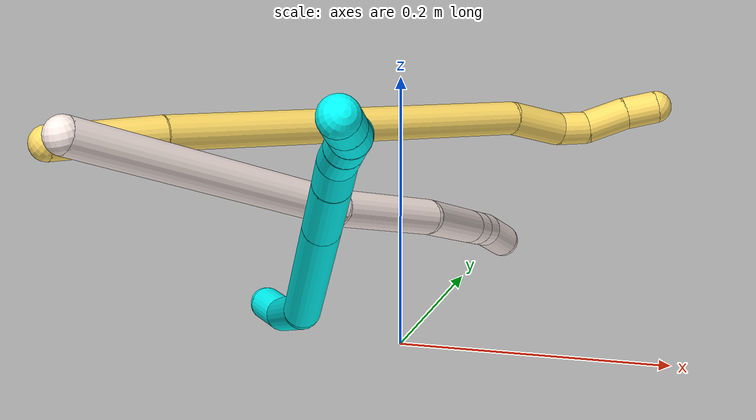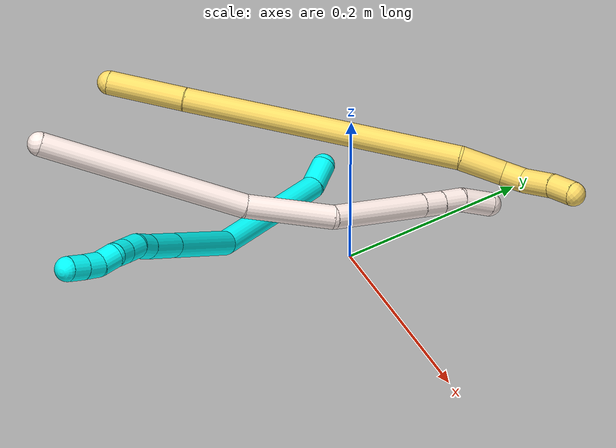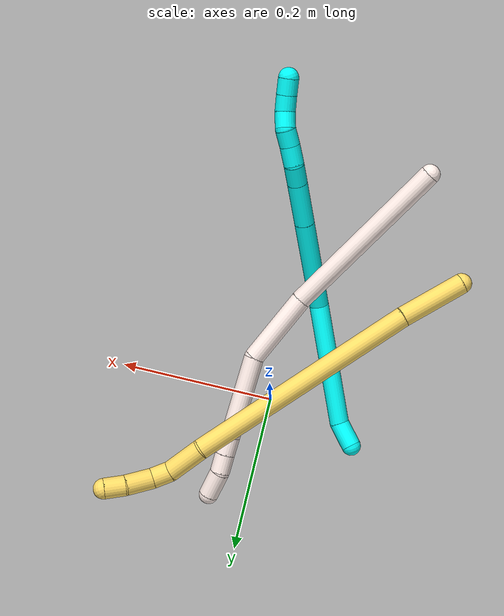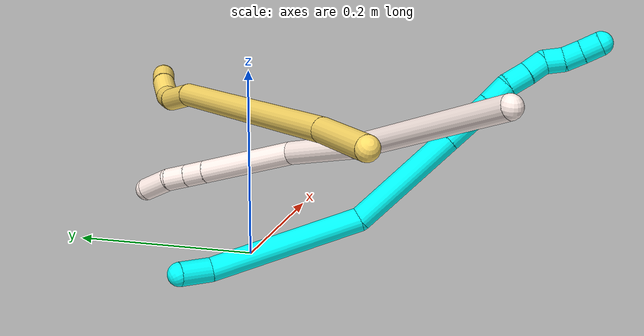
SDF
<sdf version="1.7">
 <world name="default">
  <model name="3">
   <static>0</static>
   <link name="3">
    <collision name="collision-cylinder-e_1_1_4">
     <pose>0.006016 0.003987 0.015242 -0.25588 0.364738 -0.047439</pose>
     <geometry><cylinder><radius>0.0125</radius><length>0.033728</length></cylinder></geometry>
     <surface>
      <friction><ode><mu>1.16</mu><mu2>1.16</mu2><slip1>0</slip1><slip2>0</slip2></ode></friction>
      <contact><ode><kp>1e+06</kp><kd>1</kd><max_vel>0</max_vel><min_depth>0.001</min_depth></ode></contact>
     </surface>
    </collision>
    <visual name="visual-cylinder-e_1_1_4">
     <pose>0.006016 0.003987 0.015242 -0.25588 0.364738 -0.047439</pose>
     <geometry><cylinder><radius>0.0125</radius><length>0.033728</length></cylinder></geometry>
     <material><ambient>0.003922 1 0.996078 1</ambient></material>
    </visual>
    <collision name="collision-cylinder-e_2_4_5">
     <pose>0.024923 -0.000769 0.108458 0.11167 0.162849 0.009122</pose>
     <geometry><cylinder><radius>0.0125</radius><length>0.159029</length></cylinder></geometry>
     <surface>
      <friction><ode><mu>1.16</mu><mu2>1.16</mu2><slip1>0</slip1><slip2>0</slip2></ode></friction>
      <contact><ode><kp>1e+06</kp><kd>1</kd><max_vel>0</max_vel><min_depth>0.001</min_depth></ode></contact>
     </surface>
    </collision>
    <visual name="visual-cylinder-e_2_4_5">
     <pose>0.024923 -0.000769 0.108458 0.11167 0.162849 0.009122</pose>
     <geometry><cylinder><radius>0.0125</radius><length>0.159029</length></cylinder></geometry>
     <material><ambient>0.003922 1 0.996078 1</ambient></material>
    </visual>
    <collision name="collision-cylinder-e_3_5_6">
     <pose>0.022831 -0.019453 0.244131 0.170615 -0.250529 -0.021536</pose>
     <geometry><cylinder><radius>0.0125</radius><length>0.120872</length></cylinder></geometry>
     <surface>
      <friction><ode><mu>1.16</mu><mu2>1.16</mu2><slip1>0</slip1><slip2>0</slip2></ode></friction>
      <contact><ode><kp>1e+06</kp><kd>1</kd><max_vel>0</max_vel><min_depth>0.001</min_depth></ode></contact>
     </surface>
    </collision>
    <visual name="visual-cylinder-e_3_5_6">
     <pose>0.022831 -0.019453 0.244131 0.170615 -0.250529 -0.021536</pose>
     <geometry><cylinder><radius>0.0125</radius><length>0.120872</length></cylinder></geometry>
     <material><ambient>0.003922 1 0.996078 1</ambient></material>
    </visual>
    <collision name="collision-cylinder-e_4_6_7">
     <pose>0.001021 -0.033886 0.328157 0.168973 -0.250281 -0.021306</pose>
     <geometry><cylinder><radius>0.0125</radius><length>0.055131</length></cylinder></geometry>
     <surface>
      <friction><ode><mu>1.16</mu><mu2>1.16</mu2><slip1>0</slip1><slip2>0</slip2></ode></friction>
      <contact><ode><kp>1e+06</kp><kd>1</kd><max_vel>0</max_vel><min_depth>0.001</min_depth></ode></contact>
     </surface>
    </collision>
    <visual name="visual-cylinder-e_4_6_7">
     <pose>0.001021 -0.033886 0.328157 0.168973 -0.250281 -0.021306</pose>
     <geometry><cylinder><radius>0.0125</radius><length>0.055131</length></cylinder></geometry>
     <material><ambient>0.003922 1 0.996078 1</ambient></material>
    </visual>
    <collision name="collision-cylinder-e_5_7_8">
     <pose>-0.009697 -0.040487 0.366537 0.173288 -0.307798 -0.026947</pose>
     <geometry><cylinder><radius>0.0125</radius><length>0.025681</length></cylinder></geometry>
     <surface>
      <friction><ode><mu>1.16</mu><mu2>1.16</mu2><slip1>0</slip1><slip2>0</slip2></ode></friction>
      <contact><ode><kp>1e+06</kp><kd>1</kd><max_vel>0</max_vel><min_depth>0.001</min_depth></ode></contact>
     </surface>
    </collision>
    <visual name="visual-cylinder-e_5_7_8">
     <pose>-0.009697 -0.040487 0.366537 0.173288 -0.307798 -0.026947</pose>
     <geometry><cylinder><radius>0.0125</radius><length>0.025681</length></cylinder></geometry>
     <material><ambient>0.003922 1 0.996078 1</ambient></material>
    </visual>
    <collision name="collision-cylinder-e_6_8_9">
     <pose>-0.014132 -0.043834 0.390584 0.102764 -0.045152 -0.002322</pose>
     <geometry><cylinder><radius>0.0125</radius><length>0.024138</length></cylinder></geometry>
     <surface>
      <friction><ode><mu>1.16</mu><mu2>1.16</mu2><slip1>0</slip1><slip2>0</slip2></ode></friction>
      <contact><ode><kp>1e+06</kp><kd>1</kd><max_vel>0</max_vel><min_depth>0.001</min_depth></ode></contact>
     </surface>
    </collision>
    <visual name="visual-cylinder-e_6_8_9">
     <pose>-0.014132 -0.043834 0.390584 0.102764 -0.045152 -0.002322</pose>
     <geometry><cylinder><radius>0.0125</radius><length>0.024138</length></cylinder></geometry>
     <material><ambient>0.003922 1 0.996078 1</ambient></material>
    </visual>
    <collision name="collision-cylinder-e_7_9_10">
     <pose>-0.015939 -0.045786 0.412814 0.06978 -0.12247 -0.00428</pose>
     <geometry><cylinder><radius>0.0125</radius><length>0.020681</length></cylinder></geometry>
     <surface>
      <friction><ode><mu>1.16</mu><mu2>1.16</mu2><slip1>0</slip1><slip2>0</slip2></ode></friction>
      <contact><ode><kp>1e+06</kp><kd>1</kd><max_vel>0</max_vel><min_depth>0.001</min_depth></ode></contact>
     </surface>
    </collision>
    <visual name="visual-cylinder-e_7_9_10">
     <pose>-0.015939 -0.045786 0.412814 0.06978 -0.12247 -0.00428</pose>
     <geometry><cylinder><radius>0.0125</radius><length>0.020681</length></cylinder></geometry>
     <material><ambient>0.003922 1 0.996078 1</ambient></material>
    </visual>
    <collision name="collision-cylinder-e_8_10_11">
     <pose>-0.013555 -0.048786 0.432471 0.237982 0.359959 0.043499</pose>
     <geometry><cylinder><radius>0.0125</radius><length>0.020711</length></cylinder></geometry>
     <surface>
      <friction><ode><mu>1.16</mu><mu2>1.16</mu2><slip1>0</slip1><slip2>0</slip2></ode></friction>
      <contact><ode><kp>1e+06</kp><kd>1</kd><max_vel>0</max_vel><min_depth>0.001</min_depth></ode></contact>
     </surface>
    </collision>
    <visual name="visual-cylinder-e_8_10_11">
     <pose>-0.013555 -0.048786 0.432471 0.237982 0.359959 0.043499</pose>
     <geometry><cylinder><radius>0.0125</radius><length>0.020711</length></cylinder></geometry>
     <material><ambient>0.003922 1 0.996078 1</ambient></material>
    </visual>
    <collision name="collision-cylinder-e_9_11_12">
     <pose>-0.00918 -0.05488 0.451109 0.391778 0.072808 0.014454</pose>
     <geometry><cylinder><radius>0.0125</radius><length>0.020003</length></cylinder></geometry>
     <surface>
      <friction><ode><mu>1.16</mu><mu2>1.16</mu2><slip1>0</slip1><slip2>0</slip2></ode></friction>
      <contact><ode><kp>1e+06</kp><kd>1</kd><max_vel>0</max_vel><min_depth>0.001</min_depth></ode></contact>
     </surface>
    </collision>
    <visual name="visual-cylinder-e_9_11_12">
     <pose>-0.00918 -0.05488 0.451109 0.391778 0.072808 0.014454</pose>
     <geometry><cylinder><radius>0.0125</radius><length>0.020003</length></cylinder></geometry>
     <material><ambient>0.003922 1 0.996078 1</ambient></material>
    </visual>
    <collision name="collision-cylinder-e_10_12_2">
     <pose>-0.008091 -0.062814 0.469445 0.424937 0.036117 0.007792</pose>
     <geometry><cylinder><radius>0.0125</radius><length>0.020025</length></cylinder></geometry>
     <surface>
      <friction><ode><mu>1.16</mu><mu2>1.16</mu2><slip1>0</slip1><slip2>0</slip2></ode></friction>
      <contact><ode><kp>1e+06</kp><kd>1</kd><max_vel>0</max_vel><min_depth>0.001</min_depth></ode></contact>
     </surface>
    </collision>
    <visual name="visual-cylinder-e_10_12_2">
     <pose>-0.008091 -0.062814 0.469445 0.424937 0.036117 0.007792</pose>
     <geometry><cylinder><radius>0.0125</radius><length>0.020025</length></cylinder></geometry>
     <material><ambient>0.003922 1 0.996078 1</ambient></material>
    </visual>
    <collision name="collision-sphere-2">
     <pose>-0.007729 -0.066939 0.478561 0 -0 0</pose>
     <geometry><sphere><radius>0.0125</radius></sphere></geometry>
     <surface>
      <friction><ode><mu>1.16</mu><mu2>1.16</mu2><slip1>0</slip1><slip2>0</slip2></ode></friction>
      <contact><ode><kp>1e+06</kp><kd>1</kd><max_vel>0</max_vel><min_depth>0.001</min_depth></ode></contact>
     </surface>
    </collision>
    <visual name="visual-sphere-2">
     <pose>-0.007729 -0.066939 0.478561 0 -0 0</pose>
     <geometry><sphere><radius>0.0125</radius></sphere></geometry>
     <material><ambient>0.003922 1 0.996078 1</ambient></material>
    </visual>
    <collision name="collision-sphere-12">
     <pose>-0.008452 -0.058689 0.460329 0 -0 0</pose>
     <geometry><sphere><radius>0.0125</radius></sphere></geometry>
     <surface>
      <friction><ode><mu>1.16</mu><mu2>1.16</mu2><slip1>0</slip1><slip2>0</slip2></ode></friction>
      <contact><ode><kp>1e+06</kp><kd>1</kd><max_vel>0</max_vel><min_depth>0.001</min_depth></ode></contact>
     </surface>
    </collision>
    <visual name="visual-sphere-12">
     <pose>-0.008452 -0.058689 0.460329 0 -0 0</pose>
     <geometry><sphere><radius>0.0125</radius></sphere></geometry>
     <material><ambient>0.003922 1 0.996078 1</ambient></material>
    </visual>
    <collision name="collision-sphere-11">
     <pose>-0.009907 -0.051071 0.44189 0 -0 0</pose>
     <geometry><sphere><radius>0.0125</radius></sphere></geometry>
     <surface>
      <friction><ode><mu>1.16</mu><mu2>1.16</mu2><slip1>0</slip1><slip2>0</slip2></ode></friction>
      <contact><ode><kp>1e+06</kp><kd>1</kd><max_vel>0</max_vel><min_depth>0.001</min_depth></ode></contact>
     </surface>
    </collision>
    <visual name="visual-sphere-11">
     <pose>-0.009907 -0.051071 0.44189 0 -0 0</pose>
     <geometry><sphere><radius>0.0125</radius></sphere></geometry>
     <material><ambient>0.003922 1 0.996078 1</ambient></material>
    </visual>
    <collision name="collision-sphere-10">
     <pose>-0.017203 -0.046502 0.423052 0 -0 0</pose>
     <geometry><sphere><radius>0.0125</radius></sphere></geometry>
     <surface>
      <friction><ode><mu>1.16</mu><mu2>1.16</mu2><slip1>0</slip1><slip2>0</slip2></ode></friction>
      <contact><ode><kp>1e+06</kp><kd>1</kd><max_vel>0</max_vel><min_depth>0.001</min_depth></ode></contact>
     </surface>
    </collision>
    <visual name="visual-sphere-10">
     <pose>-0.017203 -0.046502 0.423052 0 -0 0</pose>
     <geometry><sphere><radius>0.0125</radius></sphere></geometry>
     <material><ambient>0.003922 1 0.996078 1</ambient></material>
    </visual>
    <collision name="collision-sphere-9">
     <pose>-0.014676 -0.045071 0.402577 0 -0 0</pose>
     <geometry><sphere><radius>0.0125</radius></sphere></geometry>
     <surface>
      <friction><ode><mu>1.16</mu><mu2>1.16</mu2><slip1>0</slip1><slip2>0</slip2></ode></friction>
      <contact><ode><kp>1e+06</kp><kd>1</kd><max_vel>0</max_vel><min_depth>0.001</min_depth></ode></contact>
     </surface>
    </collision>
    <visual name="visual-sphere-9">
     <pose>-0.014676 -0.045071 0.402577 0 -0 0</pose>
     <geometry><sphere><radius>0.0125</radius></sphere></geometry>
     <material><ambient>0.003922 1 0.996078 1</ambient></material>
    </visual>
    <collision name="collision-sphere-4">
     <pose>0.012031 0.007975 0.030484 0 -0 0</pose>
     <geometry><sphere><radius>0.0125</radius></sphere></geometry>
     <surface>
      <friction><ode><mu>1.16</mu><mu2>1.16</mu2><slip1>0</slip1><slip2>0</slip2></ode></friction>
      <contact><ode><kp>1e+06</kp><kd>1</kd><max_vel>0</max_vel><min_depth>0.001</min_depth></ode></contact>
     </surface>
    </collision>
    <visual name="visual-sphere-4">
     <pose>0.012031 0.007975 0.030484 0 -0 0</pose>
     <geometry><sphere><radius>0.0125</radius></sphere></geometry>
     <material><ambient>0.003922 1 0.996078 1</ambient></material>
    </visual>
    <collision name="collision-sphere-1">
     <geometry><sphere><radius>0.0125</radius></sphere></geometry>
     <surface>
      <friction><ode><mu>1.16</mu><mu2>1.16</mu2><slip1>0</slip1><slip2>0</slip2></ode></friction>
      <contact><ode><kp>1e+06</kp><kd>1</kd><max_vel>0</max_vel><min_depth>0.001</min_depth></ode></contact>
     </surface>
    </collision>
    <visual name="visual-sphere-1">
     <geometry><sphere><radius>0.0125</radius></sphere></geometry>
     <material><ambient>0.003922 1 0.996078 1</ambient></material>
    </visual>
    <collision name="collision-sphere-8">
     <pose>-0.013587 -0.042597 0.378591 0 -0 0</pose>
     <geometry><sphere><radius>0.0125</radius></sphere></geometry>
     <surface>
      <friction><ode><mu>1.16</mu><mu2>1.16</mu2><slip1>0</slip1><slip2>0</slip2></ode></friction>
      <contact><ode><kp>1e+06</kp><kd>1</kd><max_vel>0</max_vel><min_depth>0.001</min_depth></ode></contact>
     </surface>
    </collision>
    <visual name="visual-sphere-8">
     <pose>-0.013587 -0.042597 0.378591 0 -0 0</pose>
     <geometry><sphere><radius>0.0125</radius></sphere></geometry>
     <material><ambient>0.003922 1 0.996078 1</ambient></material>
    </visual>
    <collision name="collision-sphere-5">
     <pose>0.037814 -0.009512 0.186432 0 -0 0</pose>
     <geometry><sphere><radius>0.0125</radius></sphere></geometry>
     <surface>
      <friction><ode><mu>1.16</mu><mu2>1.16</mu2><slip1>0</slip1><slip2>0</slip2></ode></friction>
      <contact><ode><kp>1e+06</kp><kd>1</kd><max_vel>0</max_vel><min_depth>0.001</min_depth></ode></contact>
     </surface>
    </collision>
    <visual name="visual-sphere-5">
     <pose>0.037814 -0.009512 0.186432 0 -0 0</pose>
     <geometry><sphere><radius>0.0125</radius></sphere></geometry>
     <material><ambient>0.003922 1 0.996078 1</ambient></material>
    </visual>
    <collision name="collision-sphere-6">
     <pose>0.007848 -0.029394 0.30183 0 -0 0</pose>
     <geometry><sphere><radius>0.0125</radius></sphere></geometry>
     <surface>
      <friction><ode><mu>1.16</mu><mu2>1.16</mu2><slip1>0</slip1><slip2>0</slip2></ode></friction>
      <contact><ode><kp>1e+06</kp><kd>1</kd><max_vel>0</max_vel><min_depth>0.001</min_depth></ode></contact>
     </surface>
    </collision>
    <visual name="visual-sphere-6">
     <pose>0.007848 -0.029394 0.30183 0 -0 0</pose>
     <geometry><sphere><radius>0.0125</radius></sphere></geometry>
     <material><ambient>0.003922 1 0.996078 1</ambient></material>
    </visual>
    <collision name="collision-sphere-7">
     <pose>-0.005806 -0.038377 0.354483 0 -0 0</pose>
     <geometry><sphere><radius>0.0125</radius></sphere></geometry>
     <surface>
      <friction><ode><mu>1.16</mu><mu2>1.16</mu2><slip1>0</slip1><slip2>0</slip2></ode></friction>
      <contact><ode><kp>1e+06</kp><kd>1</kd><max_vel>0</max_vel><min_depth>0.001</min_depth></ode></contact>
     </surface>
    </collision>
    <visual name="visual-sphere-7">
     <pose>-0.005806 -0.038377 0.354483 0 -0 0</pose>
     <geometry><sphere><radius>0.0125</radius></sphere></geometry>
     <material><ambient>0.003922 1 0.996078 1</ambient></material>
    </visual>
    <inertial>
     <pose>0.010872 -0.021236 0.240243 0 -0 0</pose>
     <mass>0.5</mass>
     <inertia>
      <ixx>0.000513</ixx>
      <ixy>0</ixy>
      <ixz>0</ixz>
      <iyy>0.000514</iyy>
      <iyz>0</iyz>
      <izz>8.9e-05</izz>
     </inertia>
    </inertial>
   </link>
   <pose>-0.117314 0.035498 0.012444 -0.552572 1.06313 -1.60777</pose>
  </model>
  <model name="5">
   <static>0</static>
   <link name="5">
    <collision name="collision-cylinder-e_1_1_4">
     <pose>-0.002584 -0.026685 -0.030912 2.42947 -0.063194 -0.169565</pose>
     <geometry><cylinder><radius>0.0125</radius><length>0.081837</length></cylinder></geometry>
     <surface>
      <friction><ode><mu>1.16</mu><mu2>1.16</mu2><slip1>0</slip1><slip2>0</slip2></ode></friction>
      <contact><ode><kp>1e+06</kp><kd>1</kd><max_vel>0</max_vel><min_depth>0.001</min_depth></ode></contact>
     </surface>
    </collision>
    <visual name="visual-cylinder-e_1_1_4">
     <pose>-0.002584 -0.026685 -0.030912 2.42947 -0.063194 -0.169565</pose>
     <geometry><cylinder><radius>0.0125</radius><length>0.081837</length></cylinder></geometry>
     <material><ambient>1 0.858824 0.4 1</ambient></material>
    </visual>
    <collision name="collision-cylinder-e_2_4_5">
     <pose>-0.003787 -0.144611 -0.173634 2.45714 0.009573 0.02687</pose>
     <geometry><cylinder><radius>0.0125</radius><length>0.28864</length></cylinder></geometry>
     <surface>
      <friction><ode><mu>1.16</mu><mu2>1.16</mu2><slip1>0</slip1><slip2>0</slip2></ode></friction>
      <contact><ode><kp>1e+06</kp><kd>1</kd><max_vel>0</max_vel><min_depth>0.001</min_depth></ode></contact>
     </surface>
    </collision>
    <visual name="visual-cylinder-e_2_4_5">
     <pose>-0.003787 -0.144611 -0.173634 2.45714 0.009573 0.02687</pose>
     <geometry><cylinder><radius>0.0125</radius><length>0.28864</length></cylinder></geometry>
     <material><ambient>1 0.858824 0.4 1</ambient></material>
    </visual>
    <collision name="collision-cylinder-e_3_5_6">
     <pose>0.000259 -0.246609 -0.305976 2.65903 0.114422 0.457352</pose>
     <geometry><cylinder><radius>0.0125</radius><length>0.046663</length></cylinder></geometry>
     <surface>
      <friction><ode><mu>1.16</mu><mu2>1.16</mu2><slip1>0</slip1><slip2>0</slip2></ode></friction>
      <contact><ode><kp>1e+06</kp><kd>1</kd><max_vel>0</max_vel><min_depth>0.001</min_depth></ode></contact>
     </surface>
    </collision>
    <visual name="visual-cylinder-e_3_5_6">
     <pose>0.000259 -0.246609 -0.305976 2.65903 0.114422 0.457352</pose>
     <geometry><cylinder><radius>0.0125</radius><length>0.046663</length></cylinder></geometry>
     <material><ambient>1 0.858824 0.4 1</ambient></material>
    </visual>
    <collision name="collision-cylinder-e_4_6_7">
     <pose>0.000647 -0.264207 -0.335588 2.49583 -0.197497 -0.57574</pose>
     <geometry><cylinder><radius>0.0125</radius><length>0.02319</length></cylinder></geometry>
     <surface>
      <friction><ode><mu>1.16</mu><mu2>1.16</mu2><slip1>0</slip1><slip2>0</slip2></ode></friction>
      <contact><ode><kp>1e+06</kp><kd>1</kd><max_vel>0</max_vel><min_depth>0.001</min_depth></ode></contact>
     </surface>
    </collision>
    <visual name="visual-cylinder-e_4_6_7">
     <pose>0.000647 -0.264207 -0.335588 2.49583 -0.197497 -0.57574</pose>
     <geometry><cylinder><radius>0.0125</radius><length>0.02319</length></cylinder></geometry>
     <material><ambient>1 0.858824 0.4 1</ambient></material>
    </visual>
    <collision name="collision-cylinder-e_5_7_8">
     <pose>-0.008066 -0.28365 -0.35415 2.21589 -0.387603 -0.749453</pose>
     <geometry><cylinder><radius>0.0125</radius><length>0.034065</length></cylinder></geometry>
     <surface>
      <friction><ode><mu>1.16</mu><mu2>1.16</mu2><slip1>0</slip1><slip2>0</slip2></ode></friction>
      <contact><ode><kp>1e+06</kp><kd>1</kd><max_vel>0</max_vel><min_depth>0.001</min_depth></ode></contact>
     </surface>
    </collision>
    <visual name="visual-cylinder-e_5_7_8">
     <pose>-0.008066 -0.28365 -0.35415 2.21589 -0.387603 -0.749453</pose>
     <geometry><cylinder><radius>0.0125</radius><length>0.034065</length></cylinder></geometry>
     <material><ambient>1 0.858824 0.4 1</ambient></material>
    </visual>
    <collision name="collision-cylinder-e_6_8_2">
     <pose>-0.020292 -0.304246 -0.371783 2.36583 -0.469212 -1.05858</pose>
     <geometry><cylinder><radius>0.0125</radius><length>0.025605</length></cylinder></geometry>
     <surface>
      <friction><ode><mu>1.16</mu><mu2>1.16</mu2><slip1>0</slip1><slip2>0</slip2></ode></friction>
      <contact><ode><kp>1e+06</kp><kd>1</kd><max_vel>0</max_vel><min_depth>0.001</min_depth></ode></contact>
     </surface>
    </collision>
    <visual name="visual-cylinder-e_6_8_2">
     <pose>-0.020292 -0.304246 -0.371783 2.36583 -0.469212 -1.05858</pose>
     <geometry><cylinder><radius>0.0125</radius><length>0.025605</length></cylinder></geometry>
     <material><ambient>1 0.858824 0.4 1</ambient></material>
    </visual>
    <collision name="collision-sphere-2">
     <pose>-0.026081 -0.312242 -0.379935 0 -0 0</pose>
     <geometry><sphere><radius>0.0125</radius></sphere></geometry>
     <surface>
      <friction><ode><mu>1.16</mu><mu2>1.16</mu2><slip1>0</slip1><slip2>0</slip2></ode></friction>
      <contact><ode><kp>1e+06</kp><kd>1</kd><max_vel>0</max_vel><min_depth>0.001</min_depth></ode></contact>
     </surface>
    </collision>
    <visual name="visual-sphere-2">
     <pose>-0.026081 -0.312242 -0.379935 0 -0 0</pose>
     <geometry><sphere><radius>0.0125</radius></sphere></geometry>
     <material><ambient>1 0.858824 0.4 1</ambient></material>
    </visual>
    <collision name="collision-sphere-4">
     <pose>-0.005168 -0.053369 -0.061825 0 -0 0</pose>
     <geometry><sphere><radius>0.0125</radius></sphere></geometry>
     <surface>
      <friction><ode><mu>1.16</mu><mu2>1.16</mu2><slip1>0</slip1><slip2>0</slip2></ode></friction>
      <contact><ode><kp>1e+06</kp><kd>1</kd><max_vel>0</max_vel><min_depth>0.001</min_depth></ode></contact>
     </surface>
    </collision>
    <visual name="visual-sphere-4">
     <pose>-0.005168 -0.053369 -0.061825 0 -0 0</pose>
     <geometry><sphere><radius>0.0125</radius></sphere></geometry>
     <material><ambient>1 0.858824 0.4 1</ambient></material>
    </visual>
    <collision name="collision-sphere-1">
     <geometry><sphere><radius>0.0125</radius></sphere></geometry>
     <surface>
      <friction><ode><mu>1.16</mu><mu2>1.16</mu2><slip1>0</slip1><slip2>0</slip2></ode></friction>
      <contact><ode><kp>1e+06</kp><kd>1</kd><max_vel>0</max_vel><min_depth>0.001</min_depth></ode></contact>
     </surface>
    </collision>
    <visual name="visual-sphere-1">
     <geometry><sphere><radius>0.0125</radius></sphere></geometry>
     <material><ambient>1 0.858824 0.4 1</ambient></material>
    </visual>
    <collision name="collision-sphere-8">
     <pose>-0.014503 -0.29625 -0.363631 0 -0 0</pose>
     <geometry><sphere><radius>0.0125</radius></sphere></geometry>
     <surface>
      <friction><ode><mu>1.16</mu><mu2>1.16</mu2><slip1>0</slip1><slip2>0</slip2></ode></friction>
      <contact><ode><kp>1e+06</kp><kd>1</kd><max_vel>0</max_vel><min_depth>0.001</min_depth></ode></contact>
     </surface>
    </collision>
    <visual name="visual-sphere-8">
     <pose>-0.014503 -0.29625 -0.363631 0 -0 0</pose>
     <geometry><sphere><radius>0.0125</radius></sphere></geometry>
     <material><ambient>1 0.858824 0.4 1</ambient></material>
    </visual>
    <collision name="collision-sphere-5">
     <pose>-0.002405 -0.235852 -0.285444 0 -0 0</pose>
     <geometry><sphere><radius>0.0125</radius></sphere></geometry>
     <surface>
      <friction><ode><mu>1.16</mu><mu2>1.16</mu2><slip1>0</slip1><slip2>0</slip2></ode></friction>
      <contact><ode><kp>1e+06</kp><kd>1</kd><max_vel>0</max_vel><min_depth>0.001</min_depth></ode></contact>
     </surface>
    </collision>
    <visual name="visual-sphere-5">
     <pose>-0.002405 -0.235852 -0.285444 0 -0 0</pose>
     <geometry><sphere><radius>0.0125</radius></sphere></geometry>
     <material><ambient>1 0.858824 0.4 1</ambient></material>
    </visual>
    <collision name="collision-sphere-6">
     <pose>0.002922 -0.257365 -0.326508 0 -0 0</pose>
     <geometry><sphere><radius>0.0125</radius></sphere></geometry>
     <surface>
      <friction><ode><mu>1.16</mu><mu2>1.16</mu2><slip1>0</slip1><slip2>0</slip2></ode></friction>
      <contact><ode><kp>1e+06</kp><kd>1</kd><max_vel>0</max_vel><min_depth>0.001</min_depth></ode></contact>
     </surface>
    </collision>
    <visual name="visual-sphere-6">
     <pose>0.002922 -0.257365 -0.326508 0 -0 0</pose>
     <geometry><sphere><radius>0.0125</radius></sphere></geometry>
     <material><ambient>1 0.858824 0.4 1</ambient></material>
    </visual>
    <collision name="collision-sphere-7">
     <pose>-0.001628 -0.27105 -0.344668 0 -0 0</pose>
     <geometry><sphere><radius>0.0125</radius></sphere></geometry>
     <surface>
      <friction><ode><mu>1.16</mu><mu2>1.16</mu2><slip1>0</slip1><slip2>0</slip2></ode></friction>
      <contact><ode><kp>1e+06</kp><kd>1</kd><max_vel>0</max_vel><min_depth>0.001</min_depth></ode></contact>
     </surface>
    </collision>
    <visual name="visual-sphere-7">
     <pose>-0.001628 -0.27105 -0.344668 0 -0 0</pose>
     <geometry><sphere><radius>0.0125</radius></sphere></geometry>
     <material><ambient>1 0.858824 0.4 1</ambient></material>
    </visual>
    <inertial>
     <pose>-0.004143 -0.158023 -0.192582 0 -0 0</pose>
     <mass>0.5</mass>
     <inertia>
      <ixx>0.00212</ixx>
      <ixy>0</ixy>
      <ixz>0</ixz>
      <iyy>-0.001587</iyy>
      <iyz>0</iyz>
      <izz>0.001273</izz>
     </inertia>
    </inertial>
   </link>
   <pose>-0.194956 -0.173737 0.173959 -0.831279 0.351928 2.39423</pose>
  </model>
  <model name="11">
   <static>0</static>
   <link name="11">
    <collision name="collision-cylinder-e_1_1_4">
     <pose>0.055481 0.075347 -0.05722 -2.2203 0.530364 -1.00147</pose>
     <geometry><cylinder><radius>0.0125</radius><length>0.219357</length></cylinder></geometry>
     <surface>
      <friction><ode><mu>1.16</mu><mu2>1.16</mu2><slip1>0</slip1><slip2>0</slip2></ode></friction>
      <contact><ode><kp>1e+06</kp><kd>1</kd><max_vel>0</max_vel><min_depth>0.001</min_depth></ode></contact>
     </surface>
    </collision>
    <visual name="visual-cylinder-e_1_1_4">
     <pose>0.055481 0.075347 -0.05722 -2.2203 0.530364 -1.00147</pose>
     <geometry><cylinder><radius>0.0125</radius><length>0.219357</length></cylinder></geometry>
     <material><ambient>1 0.933333 0.909804 1</ambient></material>
    </visual>
    <collision name="collision-cylinder-e_2_4_5">
     <pose>0.131344 0.187481 -0.133616 -2.05132 0.456683 -0.731907</pose>
     <geometry><cylinder><radius>0.0125</radius><length>0.092444</length></cylinder></geometry>
     <surface>
      <friction><ode><mu>1.16</mu><mu2>1.16</mu2><slip1>0</slip1><slip2>0</slip2></ode></friction>
      <contact><ode><kp>1e+06</kp><kd>1</kd><max_vel>0</max_vel><min_depth>0.001</min_depth></ode></contact>
     </surface>
    </collision>
    <visual name="visual-cylinder-e_2_4_5">
     <pose>0.131344 0.187481 -0.133616 -2.05132 0.456683 -0.731907</pose>
     <geometry><cylinder><radius>0.0125</radius><length>0.092444</length></cylinder></geometry>
     <material><ambient>1 0.933333 0.909804 1</ambient></material>
    </visual>
    <collision name="collision-cylinder-e_3_5_6">
     <pose>0.155434 0.272225 -0.174352 -1.9933 0.070389 -0.108759</pose>
     <geometry><cylinder><radius>0.0125</radius><length>0.10542</length></cylinder></geometry>
     <surface>
      <friction><ode><mu>1.16</mu><mu2>1.16</mu2><slip1>0</slip1><slip2>0</slip2></ode></friction>
      <contact><ode><kp>1e+06</kp><kd>1</kd><max_vel>0</max_vel><min_depth>0.001</min_depth></ode></contact>
     </surface>
    </collision>
    <visual name="visual-cylinder-e_3_5_6">
     <pose>0.155434 0.272225 -0.174352 -1.9933 0.070389 -0.108759</pose>
     <geometry><cylinder><radius>0.0125</radius><length>0.10542</length></cylinder></geometry>
     <material><ambient>1 0.933333 0.909804 1</ambient></material>
    </visual>
    <collision name="collision-cylinder-e_4_6_7">
     <pose>0.160008 0.330873 -0.200727 -1.99388 0.073834 -0.114147</pose>
     <geometry><cylinder><radius>0.0125</radius><length>0.023516</length></cylinder></geometry>
     <surface>
      <friction><ode><mu>1.16</mu><mu2>1.16</mu2><slip1>0</slip1><slip2>0</slip2></ode></friction>
      <contact><ode><kp>1e+06</kp><kd>1</kd><max_vel>0</max_vel><min_depth>0.001</min_depth></ode></contact>
     </surface>
    </collision>
    <visual name="visual-cylinder-e_4_6_7">
     <pose>0.160008 0.330873 -0.200727 -1.99388 0.073834 -0.114147</pose>
     <geometry><cylinder><radius>0.0125</radius><length>0.023516</length></cylinder></geometry>
     <material><ambient>1 0.933333 0.909804 1</ambient></material>
    </visual>
    <collision name="collision-cylinder-e_5_7_8">
     <pose>0.161567 0.352859 -0.210452 -1.98092 0.056034 -0.085434</pose>
     <geometry><cylinder><radius>0.0125</radius><length>0.024669</length></cylinder></geometry>
     <surface>
      <friction><ode><mu>1.16</mu><mu2>1.16</mu2><slip1>0</slip1><slip2>0</slip2></ode></friction>
      <contact><ode><kp>1e+06</kp><kd>1</kd><max_vel>0</max_vel><min_depth>0.001</min_depth></ode></contact>
     </surface>
    </collision>
    <visual name="visual-cylinder-e_5_7_8">
     <pose>0.161567 0.352859 -0.210452 -1.98092 0.056034 -0.085434</pose>
     <geometry><cylinder><radius>0.0125</radius><length>0.024669</length></cylinder></geometry>
     <material><ambient>1 0.933333 0.909804 1</ambient></material>
    </visual>
    <collision name="collision-cylinder-e_6_8_2">
     <pose>0.165676 0.377776 -0.225457 -2.20853 0.198972 -0.39133</pose>
     <geometry><cylinder><radius>0.0125</radius><length>0.034593</length></cylinder></geometry>
     <surface>
      <friction><ode><mu>1.16</mu><mu2>1.16</mu2><slip1>0</slip1><slip2>0</slip2></ode></friction>
      <contact><ode><kp>1e+06</kp><kd>1</kd><max_vel>0</max_vel><min_depth>0.001</min_depth></ode></contact>
     </surface>
    </collision>
    <visual name="visual-cylinder-e_6_8_2">
     <pose>0.165676 0.377776 -0.225457 -2.20853 0.198972 -0.39133</pose>
     <geometry><cylinder><radius>0.0125</radius><length>0.034593</length></cylinder></geometry>
     <material><ambient>1 0.933333 0.909804 1</ambient></material>
    </visual>
    <collision name="collision-sphere-2">
     <pose>0.169095 0.391398 -0.235551 0 -0 0</pose>
     <geometry><sphere><radius>0.0125</radius></sphere></geometry>
     <surface>
      <friction><ode><mu>1.16</mu><mu2>1.16</mu2><slip1>0</slip1><slip2>0</slip2></ode></friction>
      <contact><ode><kp>1e+06</kp><kd>1</kd><max_vel>0</max_vel><min_depth>0.001</min_depth></ode></contact>
     </surface>
    </collision>
    <visual name="visual-sphere-2">
     <pose>0.169095 0.391398 -0.235551 0 -0 0</pose>
     <geometry><sphere><radius>0.0125</radius></sphere></geometry>
     <material><ambient>1 0.933333 0.909804 1</ambient></material>
    </visual>
    <collision name="collision-sphere-4">
     <pose>0.110961 0.150694 -0.11444 0 -0 0</pose>
     <geometry><sphere><radius>0.0125</radius></sphere></geometry>
     <surface>
      <friction><ode><mu>1.16</mu><mu2>1.16</mu2><slip1>0</slip1><slip2>0</slip2></ode></friction>
      <contact><ode><kp>1e+06</kp><kd>1</kd><max_vel>0</max_vel><min_depth>0.001</min_depth></ode></contact>
     </surface>
    </collision>
    <visual name="visual-sphere-4">
     <pose>0.110961 0.150694 -0.11444 0 -0 0</pose>
     <geometry><sphere><radius>0.0125</radius></sphere></geometry>
     <material><ambient>1 0.933333 0.909804 1</ambient></material>
    </visual>
    <collision name="collision-sphere-1">
     <geometry><sphere><radius>0.0125</radius></sphere></geometry>
     <surface>
      <friction><ode><mu>1.16</mu><mu2>1.16</mu2><slip1>0</slip1><slip2>0</slip2></ode></friction>
      <contact><ode><kp>1e+06</kp><kd>1</kd><max_vel>0</max_vel><min_depth>0.001</min_depth></ode></contact>
     </surface>
    </collision>
    <visual name="visual-sphere-1">
     <geometry><sphere><radius>0.0125</radius></sphere></geometry>
     <material><ambient>1 0.933333 0.909804 1</ambient></material>
    </visual>
    <collision name="collision-sphere-8">
     <pose>0.162257 0.364153 -0.215362 0 -0 0</pose>
     <geometry><sphere><radius>0.0125</radius></sphere></geometry>
     <surface>
      <friction><ode><mu>1.16</mu><mu2>1.16</mu2><slip1>0</slip1><slip2>0</slip2></ode></friction>
      <contact><ode><kp>1e+06</kp><kd>1</kd><max_vel>0</max_vel><min_depth>0.001</min_depth></ode></contact>
     </surface>
    </collision>
    <visual name="visual-sphere-8">
     <pose>0.162257 0.364153 -0.215362 0 -0 0</pose>
     <geometry><sphere><radius>0.0125</radius></sphere></geometry>
     <material><ambient>1 0.933333 0.909804 1</ambient></material>
    </visual>
    <collision name="collision-sphere-5">
     <pose>0.151727 0.224269 -0.152792 0 -0 0</pose>
     <geometry><sphere><radius>0.0125</radius></sphere></geometry>
     <surface>
      <friction><ode><mu>1.16</mu><mu2>1.16</mu2><slip1>0</slip1><slip2>0</slip2></ode></friction>
      <contact><ode><kp>1e+06</kp><kd>1</kd><max_vel>0</max_vel><min_depth>0.001</min_depth></ode></contact>
     </surface>
    </collision>
    <visual name="visual-sphere-5">
     <pose>0.151727 0.224269 -0.152792 0 -0 0</pose>
     <geometry><sphere><radius>0.0125</radius></sphere></geometry>
     <material><ambient>1 0.933333 0.909804 1</ambient></material>
    </visual>
    <collision name="collision-sphere-6">
     <pose>0.159141 0.320181 -0.195912 0 -0 0</pose>
     <geometry><sphere><radius>0.0125</radius></sphere></geometry>
     <surface>
      <friction><ode><mu>1.16</mu><mu2>1.16</mu2><slip1>0</slip1><slip2>0</slip2></ode></friction>
      <contact><ode><kp>1e+06</kp><kd>1</kd><max_vel>0</max_vel><min_depth>0.001</min_depth></ode></contact>
     </surface>
    </collision>
    <visual name="visual-sphere-6">
     <pose>0.159141 0.320181 -0.195912 0 -0 0</pose>
     <geometry><sphere><radius>0.0125</radius></sphere></geometry>
     <material><ambient>1 0.933333 0.909804 1</ambient></material>
    </visual>
    <collision name="collision-sphere-7">
     <pose>0.160876 0.341565 -0.205541 0 -0 0</pose>
     <geometry><sphere><radius>0.0125</radius></sphere></geometry>
     <surface>
      <friction><ode><mu>1.16</mu><mu2>1.16</mu2><slip1>0</slip1><slip2>0</slip2></ode></friction>
      <contact><ode><kp>1e+06</kp><kd>1</kd><max_vel>0</max_vel><min_depth>0.001</min_depth></ode></contact>
     </surface>
    </collision>
    <visual name="visual-sphere-7">
     <pose>0.160876 0.341565 -0.205541 0 -0 0</pose>
     <geometry><sphere><radius>0.0125</radius></sphere></geometry>
     <material><ambient>1 0.933333 0.909804 1</ambient></material>
    </visual>
    <inertial>
     <pose>0.108355 0.184223 -0.12199 0 -0 0</pose>
     <mass>0.5</mass>
     <inertia>
      <ixx>-0.000118</ixx>
      <ixy>0</ixy>
      <ixz>0</ixz>
      <iyy>-0.000708</iyy>
      <iyz>0</iyz>
      <izz>-0.001272</izz>
     </inertia>
    </inertial>
   </link>
   <pose>-0.127173 -0.287891 0.203215 0.118393 -0.180503 0.061509</pose>
  </model>
 </world>
</sdf>
